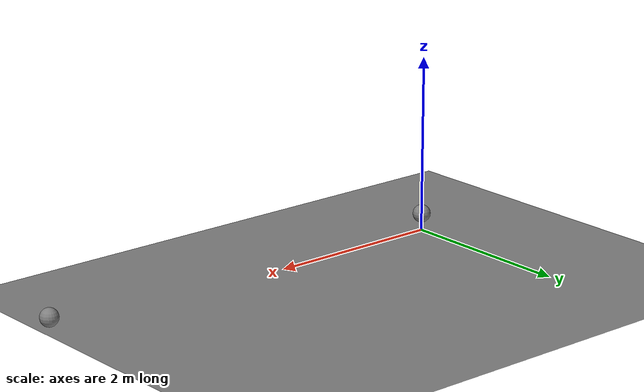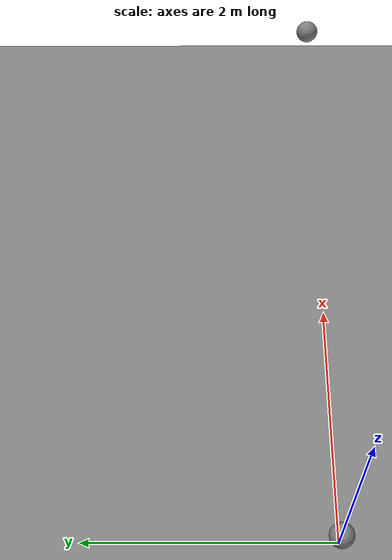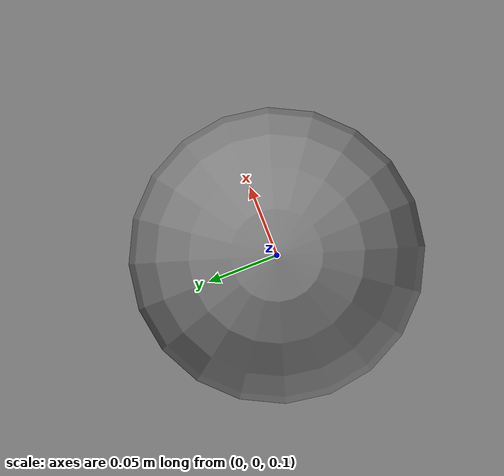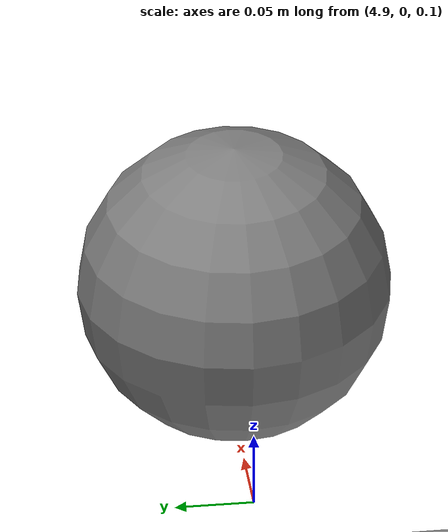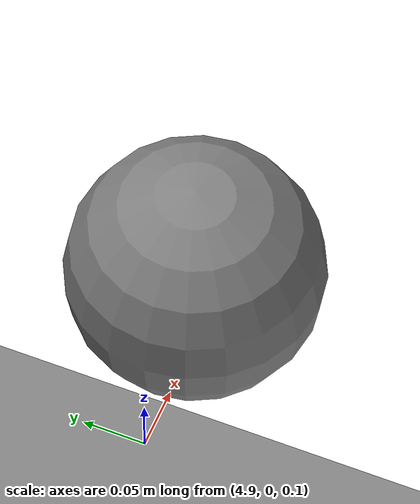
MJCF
<mujoco model="wake_contact">
        <option gravity="0 0 -9.81" timestep="0.002" sleep_tolerance="0.1">
            <flag sleep="enable"/>
        </option>
        <worldbody>
            <geom type="plane" size="5 5 0.1" solref="0.005 1.5"/>
            <body name="A" pos="0 0 0.2">
                <freejoint name="jA"/>
                <geom type="sphere" size="0.1" mass="1.0" solref="0.005 1.5"/>
            </body>
            <body name="B" pos="5 0 0.2">
                <freejoint name="jB"/>
                <geom type="sphere" size="0.1" mass="1.0" solref="0.005 1.5"/>
            </body>
        </worldbody>
    </mujoco>
